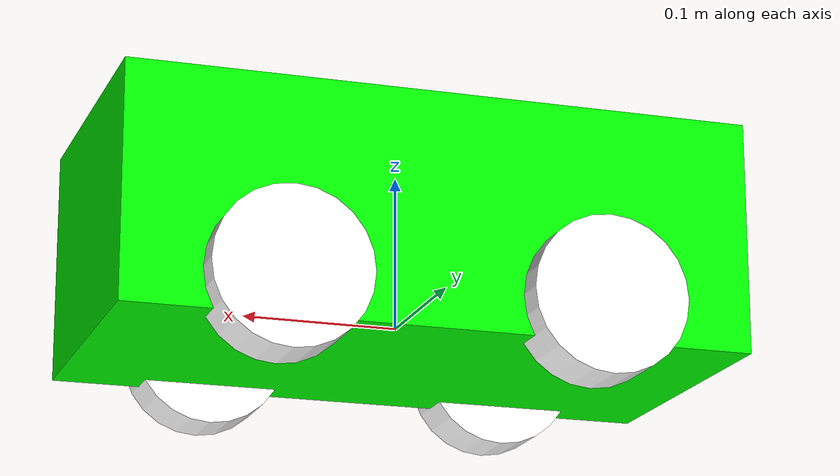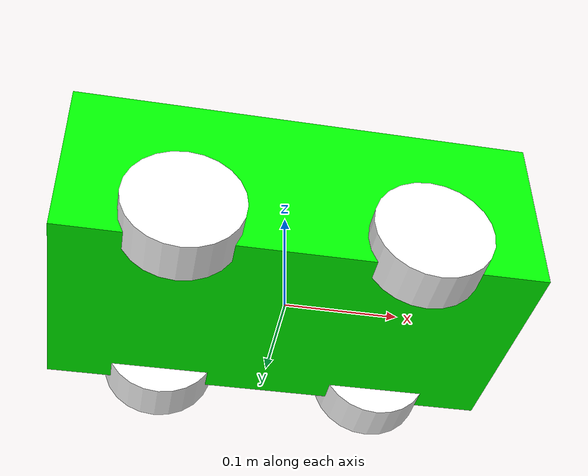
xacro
<?xml version="1.0"?>
<robot xmlns:xacro="http://www.ros.org/wiki/xacro" name="2dlidar_sim">
    <!--Macros-->
    <xacro:include filename="macros.xacro"/>
    <!--drive control-->
    <xacro:include filename="diff_drive.xacro"/>
    <!--Color-->
    <material name="white">
        <color rgba="1 1 1 1"/>
    </material>
    <!--Color-->
    <material name="black">
        <color rgba="0 0 0 1"/>
    </material>
    <!--Color-->
    <material name="blue">
        <color rgba="0 0 1 1"/>
    </material>
    <!--Color-->
    <material name="red">
        <color rgba="1 0 0 1"/>
    </material>
    <!--Color-->
    <material name="green">
        <color rgba = "0 1 0 1"/>
    </material>

    <!--Base Link-->
    <link name="base_link">
    </link>

    <!--Body Link-->
    <joint name="body_joint" type="fixed">
        <origin xyz="0.0 0.0 0.0"/>
        <parent link="base_link"/>
        <child link="body"/>
    </joint>

    <link name="body">
        <visual name="">
            <origin xyz="0.0 0.0 0.05"/>
            <geometry>
                <box size="0.4 0.2 0.15"/>
            </geometry>
            <material name="green"/>
        </visual>
        <collision>
            <origin xyz="0.0 0.0 0.05"/>
            <geometry>
                <box size="0.4 0.2 0.15"/>
            </geometry>
        </collision>
        <xacro:inertial_box mass="1.2" x="0.4" y="0.2" z="0.15">
            <origin xyz="0.0 0.0 0.05" rpy="0 0 0"/>
        </xacro:inertial_box>
    </link>

    <gazebo reference="body">
        <material>
            Gazebo/Green
        </material>
    </gazebo>

    <!--Left, Back Wheel Link-->
    <joint name="left_back_wheel_joint" type="continuous">
        <origin xyz="-0.1 0.1 0.0" rpy="-${pi/2} 0.0 0.0"/>
        <parent link="base_link"/>
        <child link="left_back_wheel"/>
        <axis xyz="0.0 0.0 1.0"/>
        <limit effort="10000" velocity="1000"/>
        <dynamcis damping="1.0" friction="1.0"/>
    </joint>

    <link name="left_back_wheel">
        <visual>
            <geometry>
                <cylinder radius="0.05" length="0.04"/>
            </geometry>
            <material name="white"/>
        </visual>
        <collision>
           <geometry>
                <cylinder radius="0.05" length="0.04"/>
           </geometry>
        </collision>
        <xacro:inertial_cylinder mass="0.4" length="0.04" radius="0.05">
            <origin xyz="0 0 0" rpy="0 0 0"/>
        </xacro:inertial_cylinder>
    </link>

    <gazebo reference="left_back_wheel">
        <material>
            Gazebo/White
        </material>
        <!--mu1 = 주축 방향 마찰계수, 직진 및 후진에 영향 -->
        <!--mu2 = 주축의 수직 방향 마찰계수, 회전에 영향 -->
    </gazebo>

    <!--Right, Back Wheel Link-->
    <joint name="right_back_wheel_joint" type="continuous">
        <origin xyz="-0.1 -0.1 0.0" rpy="-${pi/2} 0.0 0.0"/>
        <parent link="base_link"/>
        <child link="right_back_wheel"/>
        <axis xyz="0.0 0.0 1.0"/>
        <limit effort="10000" velocity="1000"/>
        <dynamcis damping="1.0" friction="1.0"/>
    </joint>

    <link name="right_back_wheel">
        <visual>
            <geometry>
                <cylinder radius="0.05" length="0.04"/>
            </geometry>
            <material name="white"/>
        </visual>
        <collision>
           <geometry>
                <cylinder radius="0.05" length="0.04"/>
           </geometry>
        </collision>
        <xacro:inertial_cylinder mass="0.4" length="0.04" radius="0.05">
            <origin xyz="0 0 0" rpy="0 0 0"/>
        </xacro:inertial_cylinder>
    </link>

    <gazebo reference="right_back_wheel">
        <material>
            Gazebo/White
        </material>
    </gazebo>

    <!--Left, Front Wheel Link-->
    <joint name="left_front_wheel_joint" type="continuous">
        <origin xyz="0.1 0.1 0.0" rpy="-${pi/2} 0.0 0.0"/>
        <parent link="base_link"/>
        <child link="left_front_wheel"/>
        <axis xyz="0.0 0.0 1.0"/>
        <limit effort="10000" velocity="1000"/>
        <dynamcis damping="1.0" friction="1.0"/>
    </joint>

    <link name="left_front_wheel">
        <visual>
            <geometry>
                <cylinder radius="0.05" length="0.04"/>
            </geometry>
            <material name="white"/>
        </visual>
        <collision>
           <geometry>
                <cylinder radius="0.05" length="0.04"/>
           </geometry>
        </collision>
        <xacro:inertial_cylinder mass="0.4" length="0.04" radius="0.05">
            <origin xyz="0 0 0" rpy="0 0 0"/>
        </xacro:inertial_cylinder>
    </link>

    <gazebo reference="left_front_wheel">
        <material>
            Gazebo/White
        </material>
        <!--mu1 = 주축 방향 마찰계수, 직진 및 후진에 영향 -->
        <!--mu2 = 주축의 수직 방향 마찰계수, 회전에 영향 -->
    </gazebo>

    <!--Right, Front Wheel Link-->
    <joint name="right_front_wheel_joint" type="continuous">
        <origin xyz="0.1 -0.1 0.0" rpy="-${pi/2} 0.0 0.0"/>
        <parent link="base_link"/>
        <child link="right_front_wheel"/>
        <axis xyz="0.0 0.0 1.0"/>
        <limit effort="10000" velocity="1000"/>
        <dynamcis damping="1.0" friction="1.0"/>
    </joint>

    <link name="right_front_wheel">
        <visual>
            <geometry>
                <cylinder radius="0.05" length="0.04"/>
            </geometry>
            <material name="white"/>
        </visual>
        <collision>
           <geometry>
                <cylinder radius="0.05" length="0.04"/>
           </geometry>
        </collision>
        <xacro:inertial_cylinder mass="0.4" length="0.04" radius="0.05">
            <origin xyz="0 0 0" rpy="0 0 0"/>
        </xacro:inertial_cylinder>
    </link>

    <gazebo reference="right_front_wheel">
        <material>
            Gazebo/White
        </material>
        <!--mu1 = 주축 방향 마찰계수, 직진 및 후진에 영향 -->
        <!--mu2 = 주축의 수직 방향 마찰계수, 회전에 영향 -->
    </gazebo>
</robot>
